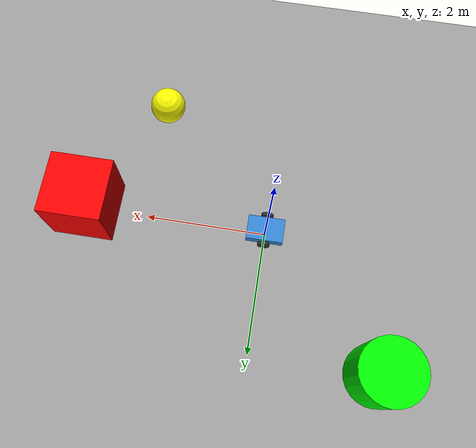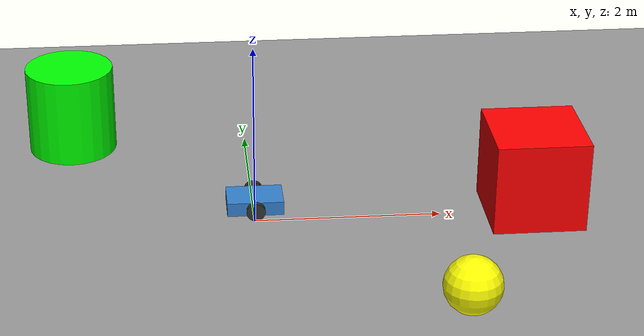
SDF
<?xml version="1.0" ?>
<sdf version="1.8">
  <world name="simple_world">

    <!-- ========== PHYSICS CONFIGURATION ========== -->
    <physics name="1ms" type="ode">
      <!-- Real-time factor: 1.0 = real-time, >1.0 = faster than real-time -->
      <real_time_factor>1.0</real_time_factor>
      <!-- Time step: smaller = more accurate, but slower -->
      <max_step_size>0.001</max_step_size>
    </physics>

    <!-- ========== SCENE SETTINGS ========== -->
    <scene>
      <ambient>0.4 0.4 0.4 1</ambient>
      <background>0.7 0.7 0.7 1</background>
      <shadows>true</shadows>
    </scene>

    <!-- ========== LIGHTING ========== -->
    <!-- Sun: directional light from above -->
    <light type="directional" name="sun">
      <pose>0 0 10 0 0 0</pose>
      <diffuse>1 1 1 1</diffuse>
      <specular>0.5 0.5 0.5 1</specular>
      <direction>-0.5 0.1 -0.9</direction>
      <cast_shadows>true</cast_shadows>
    </light>

    <!-- ========== GROUND PLANE ========== -->
    <model name="ground_plane">
      <static>true</static>
      <link name="link">
        <collision name="collision">
          <geometry>
            <plane>
              <normal>0 0 1</normal>
              <size>100 100</size>
            </plane>
          </geometry>
        </collision>
        <visual name="visual">
          <geometry>
            <plane>
              <normal>0 0 1</normal>
              <size>100 100</size>
            </plane>
          </geometry>
          <material>
            <ambient>0.6 0.6 0.6 1</ambient>
            <diffuse>0.6 0.6 0.6 1</diffuse>
          </material>
        </visual>
      </link>
    </model>

    <!-- ========== OBSTACLES ========== -->

    <!-- Red box obstacle -->
    <model name="box1">
      <pose>3 0 0.5 0 0 0</pose>
      <static>true</static>
      <link name="link">
        <collision name="collision">
          <geometry>
            <box>
              <size>1 1 1</size>
            </box>
          </geometry>
        </collision>
        <visual name="visual">
          <geometry>
            <box>
              <size>1 1 1</size>
            </box>
          </geometry>
          <material>
            <ambient>1 0 0 1</ambient>
            <diffuse>1 0 0 1</diffuse>
          </material>
        </visual>
      </link>
    </model>

    <!-- Green cylinder obstacle -->
    <model name="cylinder1">
      <pose>-2 2 0.5 0 0 0</pose>
      <static>true</static>
      <link name="link">
        <collision name="collision">
          <geometry>
            <cylinder>
              <radius>0.5</radius>
              <length>1.0</length>
            </cylinder>
          </geometry>
        </collision>
        <visual name="visual">
          <geometry>
            <cylinder>
              <radius>0.5</radius>
              <length>1.0</length>
            </cylinder>
          </geometry>
          <material>
            <ambient>0 1 0 1</ambient>
            <diffuse>0 1 0 1</diffuse>
          </material>
        </visual>
      </link>
    </model>

    <!-- Yellow sphere obstacle -->
    <model name="sphere1">
      <pose>2 -2 0.3 0 0 0</pose>
      <static>true</static>
      <link name="link">
        <collision name="collision">
          <geometry>
            <sphere>
              <radius>0.3</radius>
            </sphere>
          </geometry>
        </collision>
        <visual name="visual">
          <geometry>
            <sphere>
              <radius>0.3</radius>
            </sphere>
          </geometry>
          <material>
            <ambient>1 1 0 1</ambient>
            <diffuse>1 1 0 1</diffuse>
          </material>
        </visual>
      </link>
    </model>

    <!-- ========== ROBOT ========== -->
    <!-- Include the simple differential drive robot -->
    <include>
      <uri>file://simple_robot.sdf</uri>
      <pose>0 0 0.15 0 0 0</pose>
    </include>

    <!-- ========== GAZEBO PLUGINS ========== -->
    <!-- Scene broadcaster (publishes scene info) -->
    <plugin
      filename="gz-sim-scene-broadcaster-system"
      name="gz::sim::systems::SceneBroadcaster">
    </plugin>

    <!-- User commands (keyboard/mouse control in GUI) -->
    <plugin
      filename="gz-sim-user-commands-system"
      name="gz::sim::systems::UserCommands">
    </plugin>

  </world>
</sdf>

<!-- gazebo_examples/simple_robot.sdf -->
<sdf version="1.8">
  <model name="simple_diff_drive_robot">

    <!-- ========== BASE LINK ========== -->
    <link name="base_link">
      <!-- Position: 10cm above ground -->
      <pose>0 0 0.1 0 0 0</pose>

      <!-- Physical properties -->
      <inertial>
        <mass>10.0</mass>
        <inertia>
          <ixx>0.1</ixx>
          <iyy>0.1</iyy>
          <izz>0.1</izz>
          <ixy>0</ixy>
          <ixz>0</ixz>
          <iyz>0</iyz>
        </inertia>
      </inertial>

      <!-- Collision geometry (for physics) -->
      <collision name="base_collision">
        <geometry>
          <box>
            <size>0.6 0.4 0.15</size>
          </box>
        </geometry>
      </collision>

      <!-- Visual geometry (what you see) -->
      <visual name="base_visual">
        <geometry>
          <box>
            <size>0.6 0.4 0.15</size>
          </box>
        </geometry>
        <material>
          <ambient>0.2 0.5 0.8 1</ambient>
          <diffuse>0.2 0.5 0.8 1</diffuse>
          <specular>0.1 0.1 0.1 1</specular>
        </material>
      </visual>
    </link>

    <!-- ========== LEFT WHEEL ========== -->
    <link name="left_wheel">
      <!-- Wheel positioned to the left of base, rotated 90° -->
      <pose>0 0.25 0.1 -1.5707 0 0</pose>

      <inertial>
        <mass>1.0</mass>
        <inertia>
          <ixx>0.005</ixx>
          <iyy>0.005</iyy>
          <izz>0.005</izz>
          <ixy>0</ixy>
          <ixz>0</ixz>
          <iyz>0</iyz>
        </inertia>
      </inertial>

      <collision name="left_wheel_collision">
        <geometry>
          <cylinder>
            <radius>0.1</radius>
            <length>0.05</length>
          </cylinder>
        </geometry>
        <!-- Friction properties for realistic wheel behavior -->
        <surface>
          <friction>
            <ode>
              <mu>1.0</mu>
              <mu2>1.0</mu2>
            </ode>
          </friction>
        </surface>
      </collision>

      <visual name="left_wheel_visual">
        <geometry>
          <cylinder>
            <radius>0.1</radius>
            <length>0.05</length>
          </cylinder>
        </geometry>
        <material>
          <ambient>0.2 0.2 0.2 1</ambient>
          <diffuse>0.2 0.2 0.2 1</diffuse>
        </material>
      </visual>
    </link>

    <!-- ========== RIGHT WHEEL ========== -->
    <link name="right_wheel">
      <!-- Wheel positioned to the right of base, rotated 90° -->
      <pose>0 -0.25 0.1 -1.5707 0 0</pose>

      <inertial>
        <mass>1.0</mass>
        <inertia>
          <ixx>0.005</ixx>
          <iyy>0.005</iyy>
          <izz>0.005</izz>
          <ixy>0</ixy>
          <ixz>0</ixz>
          <iyz>0</iyz>
        </inertia>
      </inertial>

      <collision name="right_wheel_collision">
        <geometry>
          <cylinder>
            <radius>0.1</radius>
            <length>0.05</length>
          </cylinder>
        </geometry>
        <surface>
          <friction>
            <ode>
              <mu>1.0</mu>
              <mu2>1.0</mu2>
            </ode>
          </friction>
        </surface>
      </collision>

      <visual name="right_wheel_visual">
        <geometry>
          <cylinder>
            <radius>0.1</radius>
            <length>0.05</length>
          </cylinder>
        </geometry>
        <material>
          <ambient>0.2 0.2 0.2 1</ambient>
          <diffuse>0.2 0.2 0.2 1</diffuse>
        </material>
      </visual>
    </link>

    <!-- ========== CASTER WHEEL (for stability) ========== -->
    <link name="caster">
      <pose>-0.25 0 0.05 0 0 0</pose>

      <inertial>
        <mass>0.5</mass>
        <inertia>
          <ixx>0.001</ixx>
          <iyy>0.001</iyy>
          <izz>0.001</izz>
          <ixy>0</ixy>
          <ixz>0</ixz>
          <iyz>0</iyz>
        </inertia>
      </inertial>

      <collision name="caster_collision">
        <geometry>
          <sphere>
            <radius>0.05</radius>
          </sphere>
        </geometry>
        <surface>
          <friction>
            <ode>
              <mu>0.0</mu>
              <mu2>0.0</mu2>
            </ode>
          </friction>
        </surface>
      </collision>

      <visual name="caster_visual">
        <geometry>
          <sphere>
            <radius>0.05</radius>
          </sphere>
        </geometry>
        <material>
          <ambient>0.5 0.5 0.5 1</ambient>
          <diffuse>0.5 0.5 0.5 1</diffuse>
        </material>
      </visual>
    </link>

    <!-- ========== JOINTS ========== -->

    <!-- Left wheel joint (revolute = rotating) -->
    <joint name="left_wheel_joint" type="revolute">
      <parent>base_link</parent>
      <child>left_wheel</child>
      <axis>
        <xyz>0 1 0</xyz>
        <limit>
          <lower>-1e16</lower>
          <upper>1e16</upper>
        </limit>
      </axis>
    </joint>

    <!-- Right wheel joint -->
    <joint name="right_wheel_joint" type="revolute">
      <parent>base_link</parent>
      <child>right_wheel</child>
      <axis>
        <xyz>0 1 0</xyz>
        <limit>
          <lower>-1e16</lower>
          <upper>1e16</upper>
        </limit>
      </axis>
    </joint>

    <!-- Caster joint (fixed to base) -->
    <joint name="caster_joint" type="fixed">
      <parent>base_link</parent>
      <child>caster</child>
    </joint>

    <!-- ========== DIFFERENTIAL DRIVE PLUGIN ========== -->
    <!--
    This plugin listens to /cmd_vel (Twist messages) and
    controls the left and right wheels to achieve desired
    linear and angular velocities.
    -->
    <plugin
      filename="gz-sim-diff-drive-system"
      name="gz::sim::systems::DiffDrive">
      <left_joint>left_wheel_joint</left_joint>
      <right_joint>right_wheel_joint</right_joint>
      <wheel_separation>0.5</wheel_separation>
      <wheel_radius>0.1</wheel_radius>
      <odom_publish_frequency>50</odom_publish_frequency>
      <topic>/cmd_vel</topic>
      <odom_topic>/odom</odom_topic>
      <frame_id>odom</frame_id>
      <child_frame_id>base_link</child_frame_id>
    </plugin>

  </model>
</sdf>
